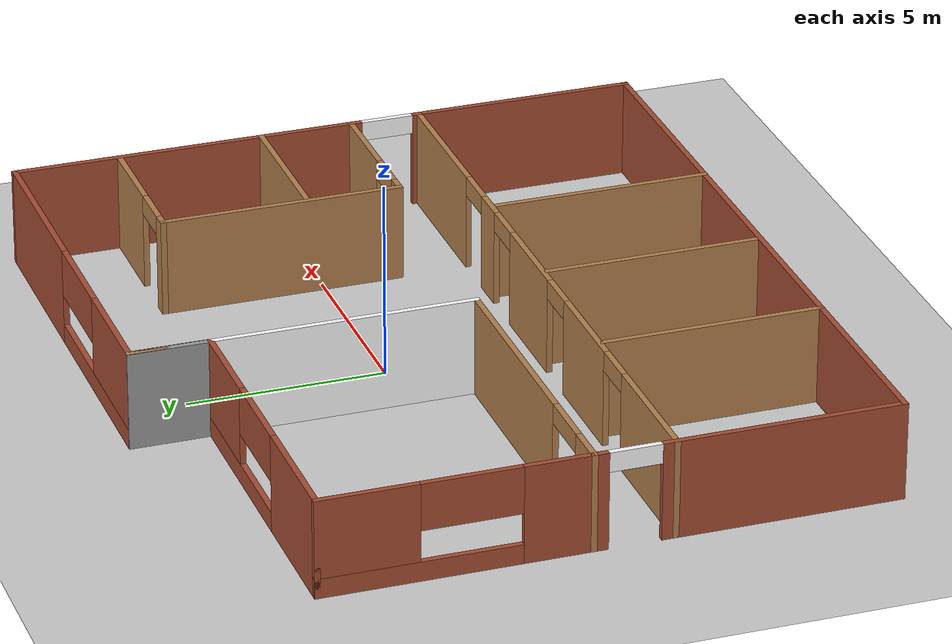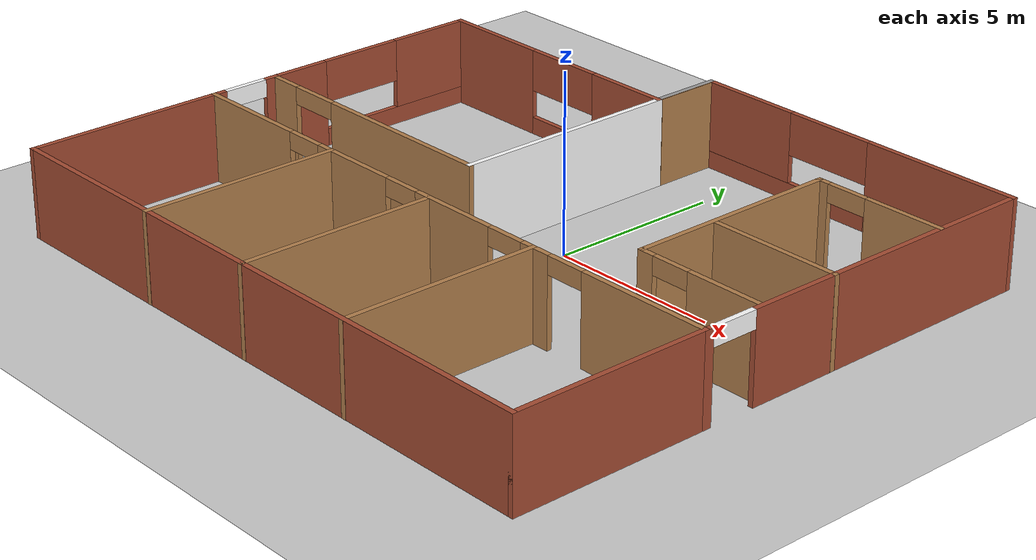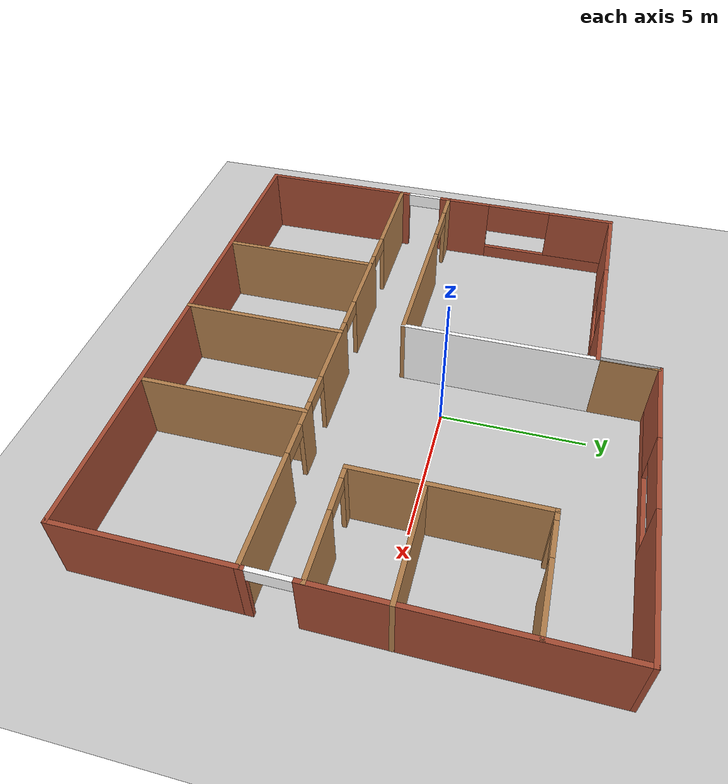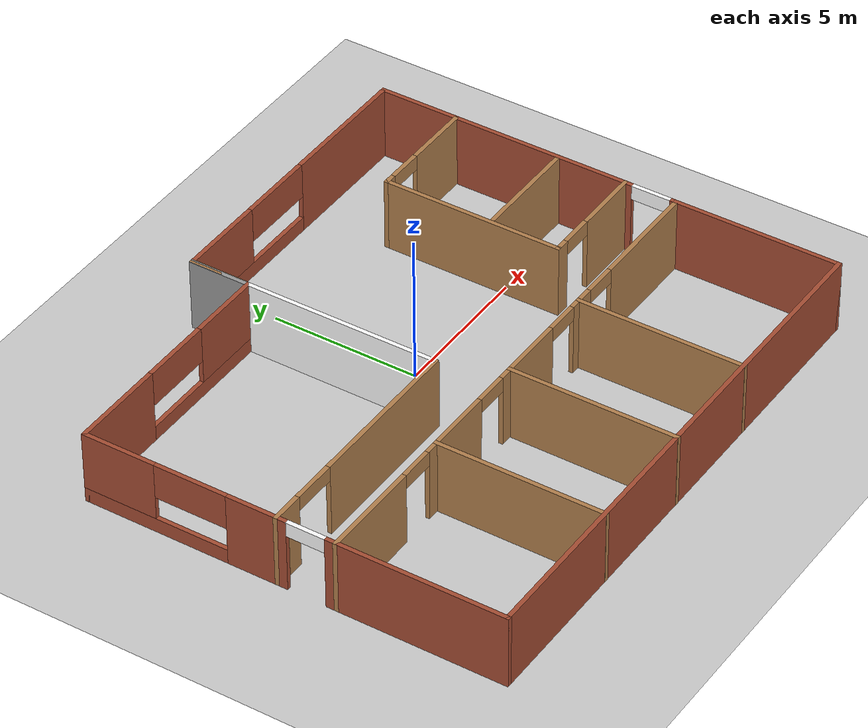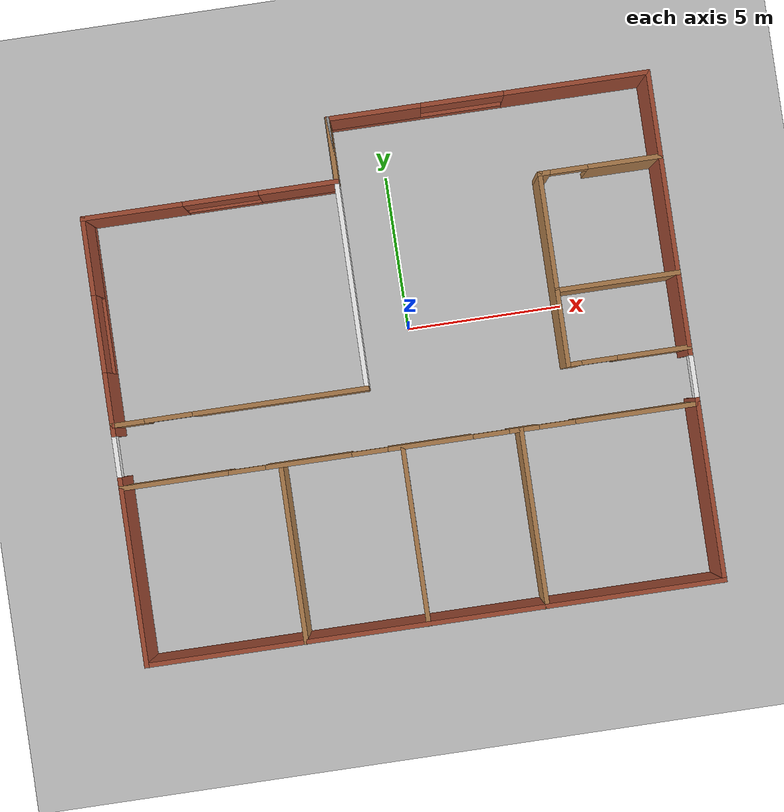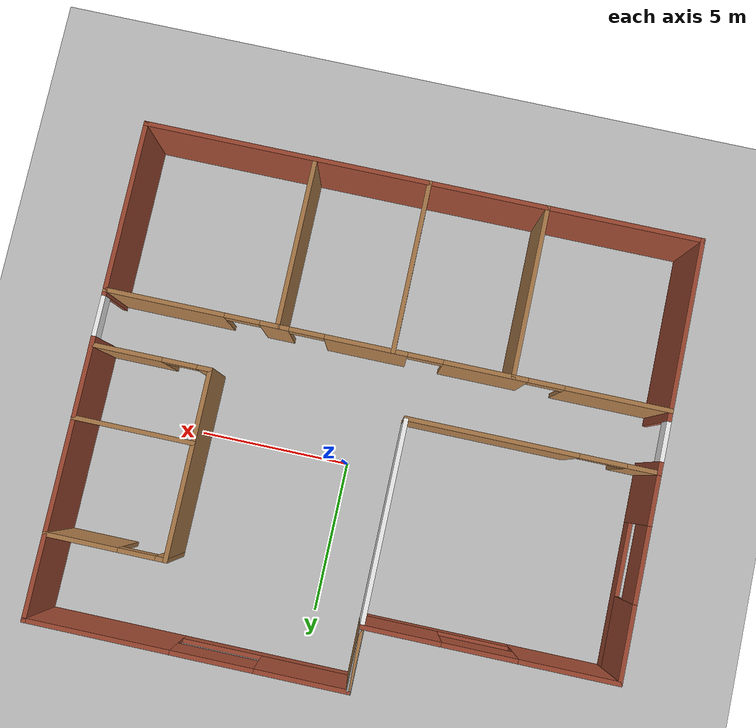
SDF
<sdf version="1.6">
 <world name="default">
  <light name="sun" type="directional">
   <pose>0 0 10 0 -0 0</pose>
   <diffuse>0.8 0.8 0.8 1</diffuse>
   <specular>0.2 0.2 0.2 1</specular>
   <attenuation>
    <range>1000</range>
    <constant>0.9</constant>
    <linear>0.01</linear>
    <quadratic>0.001</quadratic>
   </attenuation>
   <direction>-0.5 0.1 -0.9</direction>
  </light>
  <gravity>0 0 -9.8</gravity>
  <magnetic_field>6e-06 2.3e-05 -4.2e-05</magnetic_field>
  <atmosphere type="adiabatic"/>
  <physics name="default_physics" default="0" type="ode">
   <max_step_size>0.001</max_step_size>
   <real_time_factor>1</real_time_factor>
   <real_time_update_rate>1000</real_time_update_rate>
  </physics>
  <scene><ambient>0.4 0.4 0.4 1</ambient><background>0.7 0.7 0.7 1</background><shadows>1</shadows></scene>
  <audio><device>default</device></audio>
  <spherical_coordinates>
   <surface_model>EARTH_WGS84</surface_model>
   <latitude_deg>0</latitude_deg>
   <longitude_deg>0</longitude_deg>
   <elevation>0</elevation>
   <heading_deg>0</heading_deg>
  </spherical_coordinates>
  <model name="build">
   <link name="link">
    <collision name="collision">
     <geometry><plane><normal>0 0 1</normal><size>100 100</size></plane></geometry>
     <surface><friction><ode><mu>100</mu><mu2>50</mu2></ode></friction></surface>
    </collision>
    <visual name="visual">
     <cast_shadows>0</cast_shadows>
     <geometry><plane><normal>0 0 1</normal><size>100 100</size></plane></geometry>
     <material>
      <script>
       <uri>model://build/materials/scripts/GroundFloor.material</uri>
       <uri>model://build/materials/textures</uri>
       <name>GroundFloor/ground</name>
      </script>
     </material>
    </visual>
   </link>
   <pose>-0.525169 -1.26971 0 0 -0 0</pose>
   <link name="Wall_0">
    <pose>-5.12645 6.10229 0 0 -0 0</pose>
    <visual name="Wall_0_Visual_0">
     <pose>-2.49488 0 1.25 0 -0 0</pose>
     <geometry><box><size>3.26024 0.15 2.5</size></box></geometry>
     <material>
      <script><uri>file://media/materials/scripts/gazebo.material</uri><name>Gazebo/Bricks</name></script>
      <ambient>1 1 1 1</ambient>
     </material>
     <meta><layer>0</layer></meta>
    </visual>
    <collision name="Wall_0_Collision_0">
     <geometry><box><size>3.26024 0.15 2.5</size></box></geometry>
     <pose>-2.49488 0 1.25 0 -0 0</pose>
    </collision>
    <visual name="Wall_0_Visual_1">
     <pose>1.63012 0 0.25 0 -0 0</pose>
     <geometry><box><size>4.98976 0.15 0.5</size></box></geometry>
     <material>
      <script><uri>file://media/materials/scripts/gazebo.material</uri><name>Gazebo/Bricks</name></script>
      <ambient>1 1 1 1</ambient>
     </material>
     <meta><layer>0</layer></meta>
    </visual>
    <collision name="Wall_0_Collision_1">
     <geometry><box><size>4.98976 0.15 0.5</size></box></geometry>
     <pose>1.63012 0 0.25 0 -0 0</pose>
    </collision>
    <visual name="Wall_0_Visual_2">
     <pose>2.83969 0 1.5 0 -0 0</pose>
     <geometry><box><size>2.57061 0.15 2</size></box></geometry>
     <material>
      <script><uri>file://media/materials/scripts/gazebo.material</uri><name>Gazebo/Bricks</name></script>
      <ambient>1 1 1 1</ambient>
     </material>
     <meta><layer>0</layer></meta>
    </visual>
    <collision name="Wall_0_Collision_2">
     <geometry><box><size>2.57061 0.15 2</size></box></geometry>
     <pose>2.83969 0 1.5 0 -0 0</pose>
    </collision>
    <visual name="Wall_0_Visual_3">
     <pose>0.344816 0 1.9 0 -0 0</pose>
     <geometry><box><size>2.41914 0.15 1.2</size></box></geometry>
     <material>
      <script><uri>file://media/materials/scripts/gazebo.material</uri><name>Gazebo/Bricks</name></script>
      <ambient>1 1 1 1</ambient>
     </material>
     <meta><layer>0</layer></meta>
    </visual>
    <collision name="Wall_0_Collision_3">
     <geometry><box><size>2.41914 0.15 1.2</size></box></geometry>
     <pose>0.344816 0 1.9 0 -0 0</pose>
    </collision>
   </link>
   <link name="Wall_1">
    <collision name="Wall_1_Collision">
     <geometry><box><size>6.75 0.15 2.5</size></box></geometry>
     <pose>0 0 1.25 0 -0 0</pose>
    </collision>
    <visual name="Wall_1_Visual">
     <pose>0 0 1.25 0 -0 0</pose>
     <geometry><box><size>6.75 0.15 2.5</size></box></geometry>
     <material>
      <script>
       <uri>model://build/materials/scripts/logo_korea.material</uri>
       <uri>model://build/materials/textures</uri>
       <name>GaitechLogoKorea/logokorea</name>
      </script>
      <ambient>1 1 1 1</ambient>
     </material>
     <meta><layer>0</layer></meta>
    </visual>
    <pose>-1.07645 2.80229 0 0 -0 -1.5708</pose>
   </link>
   <link name="Wall_10">
    <pose>9.17356 2.80229 0 0 -0 1.5708</pose>
    <visual name="Wall_10_Visual_0">
     <pose>-5.23931 0 1.25 0 -0 0</pose>
     <geometry><box><size>0.271377 0.15 2.5</size></box></geometry>
     <material>
      <script><uri>file://media/materials/scripts/gazebo.material</uri><name>Gazebo/Bricks</name></script>
      <ambient>1 1 1 1</ambient>
     </material>
     <meta><layer>0</layer></meta>
    </visual>
    <collision name="Wall_10_Collision_0">
     <geometry><box><size>0.271377 0.15 2.5</size></box></geometry>
     <pose>-5.23931 0 1.25 0 -0 0</pose>
    </collision>
    <visual name="Wall_10_Visual_1">
     <pose>0.805429 0 1.25 0 -0 0</pose>
     <geometry><box><size>9.13914 0.15 2.5</size></box></geometry>
     <material>
      <script><uri>file://media/materials/scripts/gazebo.material</uri><name>Gazebo/Bricks</name></script>
      <ambient>1 1 1 1</ambient>
     </material>
     <meta><layer>0</layer></meta>
    </visual>
    <collision name="Wall_10_Collision_1">
     <geometry><box><size>9.13914 0.15 2.5</size></box></geometry>
     <pose>0.805429 0 1.25 0 -0 0</pose>
    </collision>
    <visual name="Wall_10_Visual_2">
     <pose>-4.43388 0 2.25 0 -0 0</pose>
     <geometry><box><size>1.33948 0.15 0.5</size></box></geometry>
     <material>
      <script>
       <uri>model://build/materials/scripts/logo_korea.material</uri>
       <uri>model://build/materials/textures</uri>
       <name>GaitechLogoKorea/logokorea</name>
      </script>
      <ambient>1 1 1 1</ambient>
     </material>
     <meta><layer>0</layer></meta>
    </visual>
    <collision name="Wall_10_Collision_2">
     <geometry><box><size>1.33948 0.15 0.5</size></box></geometry>
     <pose>-4.43388 0 2.25 0 -0 0</pose>
    </collision>
   </link>
   <link name="Wall_11">
    <pose>4.05103 8.10229 0 0 -0 3.14159</pose>
    <visual name="Wall_11_Visual_0">
     <pose>-2.85098 0 1.25 0 -0 0</pose>
     <geometry><box><size>4.6931 0.15 2.5</size></box></geometry>
     <material>
      <script><uri>file://media/materials/scripts/gazebo.material</uri><name>Gazebo/Bricks</name></script>
      <ambient>1 1 1 1</ambient>
     </material>
     <meta><layer>0</layer></meta>
    </visual>
    <collision name="Wall_11_Collision_0">
     <geometry><box><size>4.6931 0.15 2.5</size></box></geometry>
     <pose>-2.85098 0 1.25 0 -0 0</pose>
    </collision>
    <visual name="Wall_11_Visual_1">
     <pose>2.34655 0 0.25 0 -0 0</pose>
     <geometry><box><size>5.70196 0.15 0.5</size></box></geometry>
     <material>
      <script><uri>file://media/materials/scripts/gazebo.material</uri><name>Gazebo/Bricks</name></script>
      <ambient>1 1 1 1</ambient>
     </material>
     <meta><layer>0</layer></meta>
    </visual>
    <collision name="Wall_11_Collision_1">
     <geometry><box><size>5.70196 0.15 0.5</size></box></geometry>
     <pose>2.34655 0 0.25 0 -0 0</pose>
    </collision>
    <visual name="Wall_11_Visual_2">
     <pose>3.67177 0 1.5 0 -0 0</pose>
     <geometry><box><size>3.05151 0.15 2</size></box></geometry>
     <material>
      <script><uri>file://media/materials/scripts/gazebo.material</uri><name>Gazebo/Bricks</name></script>
      <ambient>1 1 1 1</ambient>
     </material>
     <meta><layer>0</layer></meta>
    </visual>
    <collision name="Wall_11_Collision_2">
     <geometry><box><size>3.05151 0.15 2</size></box></geometry>
     <pose>3.67177 0 1.5 0 -0 0</pose>
    </collision>
    <visual name="Wall_11_Visual_3">
     <pose>0.820796 0 1.9 0 -0 0</pose>
     <geometry><box><size>2.65045 0.15 1.2</size></box></geometry>
     <material>
      <script><uri>file://media/materials/scripts/gazebo.material</uri><name>Gazebo/Bricks</name></script>
      <ambient>1 1 1 1</ambient>
     </material>
     <meta><layer>0</layer></meta>
    </visual>
    <collision name="Wall_11_Collision_3">
     <geometry><box><size>2.65045 0.15 1.2</size></box></geometry>
     <pose>0.820796 0 1.9 0 -0 0</pose>
    </collision>
   </link>
   <link name="Wall_12">
    <collision name="Wall_12_Collision">
     <geometry><box><size>2 0.15 2.5</size></box></geometry>
     <pose>0 0 1.25 0 -0 0</pose>
    </collision>
    <visual name="Wall_12_Visual">
     <pose>0 0 1.25 0 -0 0</pose>
     <geometry><box><size>2 0.15 2.5</size></box></geometry>
     <material>
      <script><uri>file://media/materials/scripts/gazebo.material</uri><name>Gazebo/Wood</name></script>
      <ambient>1 1 1 1</ambient>
     </material>
     <meta><layer>0</layer></meta>
    </visual>
    <pose>-1.0715 7.17729 0 0 -0 -1.5708</pose>
   </link>
   <link name="Wall_14">
    <pose>7.24113 5.40838 0 0 -0 3.14159</pose>
    <visual name="Wall_14_Visual_0">
     <pose>-0.802472 0 1.25 0 -0 0</pose>
     <geometry><box><size>2.39506 0.15 2.5</size></box></geometry>
     <material>
      <script><uri>file://media/materials/scripts/gazebo.material</uri><name>Gazebo/Wood</name></script>
      <ambient>1 1 1 1</ambient>
     </material>
     <meta><layer>0</layer></meta>
    </visual>
    <collision name="Wall_14_Collision_0">
     <geometry><box><size>2.39506 0.15 2.5</size></box></geometry>
     <pose>-0.802472 0 1.25 0 -0 0</pose>
    </collision>
    <visual name="Wall_14_Visual_1">
     <pose>1.79788 0 1.25 0 -0 0</pose>
     <geometry><box><size>0.404246 0.15 2.5</size></box></geometry>
     <material>
      <script><uri>file://media/materials/scripts/gazebo.material</uri><name>Gazebo/Wood</name></script>
      <ambient>1 1 1 1</ambient>
     </material>
     <meta><layer>0</layer></meta>
    </visual>
    <collision name="Wall_14_Collision_1">
     <geometry><box><size>0.404246 0.15 2.5</size></box></geometry>
     <pose>1.79788 0 1.25 0 -0 0</pose>
    </collision>
    <visual name="Wall_14_Visual_2">
     <pose>0.995405 0 2.25 0 -0 0</pose>
     <geometry><box><size>1.2007 0.15 0.5</size></box></geometry>
     <material>
      <script><uri>file://media/materials/scripts/gazebo.material</uri><name>Gazebo/Wood</name></script>
      <ambient>1 1 1 1</ambient>
     </material>
     <meta><layer>0</layer></meta>
    </visual>
    <collision name="Wall_14_Collision_2">
     <geometry><box><size>1.2007 0.15 0.5</size></box></geometry>
     <pose>0.995405 0 2.25 0 -0 0</pose>
    </collision>
   </link>
   <link name="Wall_15">
    <collision name="Wall_15_Collision">
     <geometry><box><size>6.25 0.15 2.5</size></box></geometry>
     <pose>0 0 1.25 0 -0 0</pose>
    </collision>
    <visual name="Wall_15_Visual">
     <pose>0 0 1.25 0 -0 0</pose>
     <geometry><box><size>6.25 0.15 2.5</size></box></geometry>
     <material>
      <script><uri>file://media/materials/scripts/gazebo.material</uri><name>Gazebo/Wood</name></script>
      <ambient>1 1 1 1</ambient>
     </material>
     <meta><layer>0</layer></meta>
    </visual>
    <pose>5.31613 2.35838 0 0 -0 -1.5708</pose>
   </link>
   <link name="Wall_16">
    <pose>7.24113 -0.691625 0 0 -0 0</pose>
    <visual name="Wall_16_Visual_0">
     <pose>-1.74864 0 1.25 0 -0 0</pose>
     <geometry><box><size>0.502717 0.15 2.5</size></box></geometry>
     <material>
      <script><uri>file://media/materials/scripts/gazebo.material</uri><name>Gazebo/Wood</name></script>
      <ambient>1 1 1 1</ambient>
     </material>
     <meta><layer>0</layer></meta>
    </visual>
    <collision name="Wall_16_Collision_0">
     <geometry><box><size>0.502717 0.15 2.5</size></box></geometry>
     <pose>-1.74864 0 1.25 0 -0 0</pose>
    </collision>
    <visual name="Wall_16_Visual_1">
     <pose>0.817011 0 1.25 0 -0 0</pose>
     <geometry><box><size>2.36598 0.15 2.5</size></box></geometry>
     <material>
      <script><uri>file://media/materials/scripts/gazebo.material</uri><name>Gazebo/Wood</name></script>
      <ambient>1 1 1 1</ambient>
     </material>
     <meta><layer>0</layer></meta>
    </visual>
    <collision name="Wall_16_Collision_1">
     <geometry><box><size>2.36598 0.15 2.5</size></box></geometry>
     <pose>0.817011 0 1.25 0 -0 0</pose>
    </collision>
    <visual name="Wall_16_Visual_2">
     <pose>-0.93163 0 2.25 0 -0 0</pose>
     <geometry><box><size>1.13131 0.15 0.5</size></box></geometry>
     <material>
      <script><uri>file://media/materials/scripts/gazebo.material</uri><name>Gazebo/Wood</name></script>
      <ambient>1 1 1 1</ambient>
     </material>
     <meta><layer>0</layer></meta>
    </visual>
    <collision name="Wall_16_Collision_2">
     <geometry><box><size>1.13131 0.15 0.5</size></box></geometry>
     <pose>-0.93163 0 2.25 0 -0 0</pose>
    </collision>
   </link>
   <link name="Wall_18">
    <collision name="Wall_18_Collision">
     <geometry><box><size>4 0.15 2.5</size></box></geometry>
     <pose>0 0 1.25 0 -0 0</pose>
    </collision>
    <visual name="Wall_18_Visual">
     <pose>0 0 1.25 0 -0 0</pose>
     <geometry><box><size>4 0.15 2.5</size></box></geometry>
     <material>
      <script><uri>file://media/materials/scripts/gazebo.material</uri><name>Gazebo/Wood</name></script>
      <ambient>1 1 1 1</ambient>
     </material>
     <meta><layer>0</layer></meta>
    </visual>
    <pose>7.25145 1.68435 0 0 -0 0</pose>
   </link>
   <link name="Wall_2">
    <pose>-5.12645 -0.497707 0 0 -0 3.14159</pose>
    <visual name="Wall_2_Visual_0">
     <pose>-1.3104 0 1.25 0 -0 0</pose>
     <geometry><box><size>5.6292 0.15 2.5</size></box></geometry>
     <material>
      <script><uri>file://media/materials/scripts/gazebo.material</uri><name>Gazebo/Wood</name></script>
      <ambient>1 1 1 1</ambient>
     </material>
     <meta><layer>0</layer></meta>
    </visual>
    <collision name="Wall_2_Collision_0">
     <geometry><box><size>5.6292 0.15 2.5</size></box></geometry>
     <pose>-1.3104 0 1.25 0 -0 0</pose>
    </collision>
    <visual name="Wall_2_Visual_1">
     <pose>3.57686 0 1.25 0 -0 0</pose>
     <geometry><box><size>1.09628 0.15 2.5</size></box></geometry>
     <material>
      <script><uri>file://media/materials/scripts/gazebo.material</uri><name>Gazebo/Wood</name></script>
      <ambient>1 1 1 1</ambient>
     </material>
     <meta><layer>0</layer></meta>
    </visual>
    <collision name="Wall_2_Collision_1">
     <geometry><box><size>1.09628 0.15 2.5</size></box></geometry>
     <pose>3.57686 0 1.25 0 -0 0</pose>
    </collision>
    <visual name="Wall_2_Visual_2">
     <pose>2.26646 0 2.25 0 -0 0</pose>
     <geometry><box><size>1.52453 0.15 0.5</size></box></geometry>
     <material>
      <script><uri>file://media/materials/scripts/gazebo.material</uri><name>Gazebo/Wood</name></script>
      <ambient>1 1 1 1</ambient>
     </material>
     <meta><layer>0</layer></meta>
    </visual>
    <collision name="Wall_2_Collision_2">
     <geometry><box><size>1.52453 0.15 0.5</size></box></geometry>
     <pose>2.26646 0 2.25 0 -0 0</pose>
    </collision>
   </link>
   <link name="Wall_21">
    <collision name="Wall_21_Collision">
     <geometry><box><size>5.75 0.15 2.5</size></box></geometry>
     <pose>0 0 1.25 0 -0 0</pose>
    </collision>
    <visual name="Wall_21_Visual">
     <pose>0 0 1.25 0 -0 0</pose>
     <geometry><box><size>5.75 0.15 2.5</size></box></geometry>
     <material>
      <script><uri>file://media/materials/scripts/gazebo.material</uri><name>Gazebo/Wood</name></script>
      <ambient>1 1 1 1</ambient>
     </material>
     <meta><layer>0</layer></meta>
    </visual>
    <pose>-4.11084 -5.30229 0 0 -0 -1.5708</pose>
   </link>
   <link name="Wall_23">
    <collision name="Wall_23_Collision">
     <geometry><box><size>5.75 0.15 2.5</size></box></geometry>
     <pose>0 0 1.25 0 -0 0</pose>
    </collision>
    <visual name="Wall_23_Visual">
     <pose>0 0 1.25 0 -0 0</pose>
     <geometry><box><size>5.75 0.15 2.5</size></box></geometry>
     <material>
      <script><uri>file://media/materials/scripts/gazebo.material</uri><name>Gazebo/Wood</name></script>
      <ambient>1 1 1 1</ambient>
     </material>
     <meta><layer>0</layer></meta>
    </visual>
    <pose>-0.2249 -5.30229 0 0 -0 -1.5708</pose>
   </link>
   <link name="Wall_27">
    <collision name="Wall_27_Collision">
     <geometry><box><size>5.75 0.15 2.5</size></box></geometry>
     <pose>0 0 1.25 0 -0 0</pose>
    </collision>
    <visual name="Wall_27_Visual">
     <pose>0 0 1.25 0 -0 0</pose>
     <geometry><box><size>5.75 0.15 2.5</size></box></geometry>
     <material>
      <script><uri>file://media/materials/scripts/gazebo.material</uri><name>Gazebo/Wood</name></script>
      <ambient>1 1 1 1</ambient>
     </material>
     <meta><layer>0</layer></meta>
    </visual>
    <pose>3.54539 -5.30229 0 0 -0 -1.5708</pose>
   </link>
   <link name="Wall_3">
    <pose>-9.17644 2.80229 0 0 -0 1.5708</pose>
    <visual name="Wall_3_Visual_0">
     <pose>-2.49273 0 1.25 0 -0 0</pose>
     <geometry><box><size>1.76453 0.15 2.5</size></box></geometry>
     <material>
      <script><uri>file://media/materials/scripts/gazebo.material</uri><name>Gazebo/Bricks</name></script>
      <ambient>1 1 1 1</ambient>
     </material>
     <meta><layer>0</layer></meta>
    </visual>
    <collision name="Wall_3_Collision_0">
     <geometry><box><size>1.76453 0.15 2.5</size></box></geometry>
     <pose>-2.49273 0 1.25 0 -0 0</pose>
    </collision>
    <visual name="Wall_3_Visual_1">
     <pose>0.882266 0 0.25 0 -0 0</pose>
     <geometry><box><size>4.98547 0.15 0.5</size></box></geometry>
     <material>
      <script><uri>file://media/materials/scripts/gazebo.material</uri><name>Gazebo/Bricks</name></script>
      <ambient>1 1 1 1</ambient>
     </material>
     <meta><layer>0</layer></meta>
    </visual>
    <collision name="Wall_3_Collision_1">
     <geometry><box><size>4.98547 0.15 0.5</size></box></geometry>
     <pose>0.882266 0 0.25 0 -0 0</pose>
    </collision>
    <visual name="Wall_3_Visual_2">
     <pose>2.11497 0 1.5 0 -0 0</pose>
     <geometry><box><size>2.52007 0.15 2</size></box></geometry>
     <material>
      <script><uri>file://media/materials/scripts/gazebo.material</uri><name>Gazebo/Bricks</name></script>
      <ambient>1 1 1 1</ambient>
     </material>
     <meta><layer>0</layer></meta>
    </visual>
    <collision name="Wall_3_Collision_2">
     <geometry><box><size>2.52007 0.15 2</size></box></geometry>
     <pose>2.11497 0 1.5 0 -0 0</pose>
    </collision>
    <visual name="Wall_3_Visual_3">
     <pose>-0.377767 0 1.9 0 -0 0</pose>
     <geometry><box><size>2.4654 0.15 1.2</size></box></geometry>
     <material>
      <script><uri>file://media/materials/scripts/gazebo.material</uri><name>Gazebo/Bricks</name></script>
      <ambient>1 1 1 1</ambient>
     </material>
     <meta><layer>0</layer></meta>
    </visual>
    <collision name="Wall_3_Collision_3">
     <geometry><box><size>2.4654 0.15 1.2</size></box></geometry>
     <pose>-0.377767 0 1.9 0 -0 0</pose>
    </collision>
   </link>
   <link name="Wall_35">
    <collision name="Wall_35_Collision">
     <geometry><box><size>2 0.15 2.5</size></box></geometry>
     <pose>0 0 1.25 0 -0 0</pose>
    </collision>
    <visual name="Wall_35_Visual">
     <pose>0 0 1.25 0 -0 0</pose>
     <geometry><box><size>2 0.15 2.5</size></box></geometry>
     <material>
      <script><uri>file://media/materials/scripts/gazebo.material</uri><name>Gazebo/Grey</name></script>
      <ambient>1 1 1 1</ambient>
     </material>
     <meta><layer>0</layer></meta>
    </visual>
    <pose>-1.08899 7.17729 0 0 -0 -1.5708</pose>
   </link>
   <link name="Wall_5">
    <pose>-9.17644 -4.29771 0 0 -0 -1.5708</pose>
    <visual name="Wall_5_Visual_0">
     <pose>-3.65966 0 1.25 0 -0 0</pose>
     <geometry><box><size>0.430683 0.15 2.5</size></box></geometry>
     <material>
      <script><uri>file://media/materials/scripts/gazebo.material</uri><name>Gazebo/Bricks</name></script>
      <ambient>1 1 1 1</ambient>
     </material>
     <meta><layer>0</layer></meta>
    </visual>
    <collision name="Wall_5_Collision_0">
     <geometry><box><size>0.430683 0.15 2.5</size></box></geometry>
     <pose>-3.65966 0 1.25 0 -0 0</pose>
    </collision>
    <visual name="Wall_5_Visual_1">
     <pose>0.861952 0 1.25 0 -0 0</pose>
     <geometry><box><size>6.0261 0.15 2.5</size></box></geometry>
     <material>
      <script><uri>file://media/materials/scripts/gazebo.material</uri><name>Gazebo/Bricks</name></script>
      <ambient>1 1 1 1</ambient>
     </material>
     <meta><layer>0</layer></meta>
    </visual>
    <collision name="Wall_5_Collision_1">
     <geometry><box><size>6.0261 0.15 2.5</size></box></geometry>
     <pose>0.861952 0 1.25 0 -0 0</pose>
    </collision>
    <visual name="Wall_5_Visual_2">
     <pose>-2.79771 0 2.25 0 -0 0</pose>
     <geometry><box><size>1.29322 0.15 0.5</size></box></geometry>
     <material>
      <script>
       <uri>model://build/materials/scripts/logo_korea.material</uri>
       <uri>model://build/materials/textures</uri>
       <name>GaitechLogoKorea/logokorea</name>
      </script>
      <ambient>1 1 1 1</ambient>
     </material>
     <meta><layer>0</layer></meta>
    </visual>
    <collision name="Wall_5_Collision_2">
     <geometry><box><size>1.29322 0.15 0.5</size></box></geometry>
     <pose>-2.79771 0 2.25 0 -0 0</pose>
    </collision>
   </link>
   <link name="Wall_6">
    <collision name="Wall_6_Collision">
     <geometry><box><size>18.5 0.15 2.5</size></box></geometry>
     <pose>0 0 1.25 0 -0 0</pose>
    </collision>
    <visual name="Wall_6_Visual">
     <pose>0 0 1.25 0 -0 0</pose>
     <geometry><box><size>18.5 0.15 2.5</size></box></geometry>
     <material>
      <script><uri>file://media/materials/scripts/gazebo.material</uri><name>Gazebo/Bricks</name></script>
      <ambient>1 1 1 1</ambient>
     </material>
     <meta><layer>0</layer></meta>
    </visual>
    <pose>-0.001445 -8.09771 0 0 -0 0</pose>
   </link>
   <link name="Wall_7">
    <collision name="Wall_7_Collision">
     <geometry><box><size>5.75 0.15 2.5</size></box></geometry>
     <pose>0 0 1.25 0 -0 0</pose>
    </collision>
    <visual name="Wall_7_Visual">
     <pose>0 0 1.25 0 -0 0</pose>
     <geometry><box><size>5.75 0.15 2.5</size></box></geometry>
     <material>
      <script><uri>file://media/materials/scripts/gazebo.material</uri><name>Gazebo/Bricks</name></script>
      <ambient>1 1 1 1</ambient>
     </material>
     <meta><layer>0</layer></meta>
    </visual>
    <pose>9.17356 -5.29771 0 0 -0 1.5708</pose>
   </link>
   <link name="Wall_8">
    <pose>-0.001445 -2.49771 0 0 -0 3.14159</pose>
    <visual name="Wall_8_Visual_0">
     <pose>-7.26232 0 1.25 0 -0 0</pose>
     <geometry><box><size>3.97537 0.15 2.5</size></box></geometry>
     <material>
      <script><uri>file://media/materials/scripts/gazebo.material</uri><name>Gazebo/Wood</name></script>
      <ambient>1 1 1 1</ambient>
     </material>
     <meta><layer>0</layer></meta>
    </visual>
    <collision name="Wall_8_Collision_0">
     <geometry><box><size>3.97537 0.15 2.5</size></box></geometry>
     <pose>-7.26232 0 1.25 0 -0 0</pose>
    </collision>
    <visual name="Wall_8_Visual_1">
     <pose>-3.64497 0 1.25 0 -0 0</pose>
     <geometry><box><size>0.950449 0.15 2.5</size></box></geometry>
     <material>
      <script><uri>file://media/materials/scripts/gazebo.material</uri><name>Gazebo/Wood</name></script>
      <ambient>1 1 1 1</ambient>
     </material>
     <meta><layer>0</layer></meta>
    </visual>
    <collision name="Wall_8_Collision_1">
     <geometry><box><size>0.950449 0.15 2.5</size></box></geometry>
     <pose>-3.64497 0 1.25 0 -0 0</pose>
    </collision>
    <visual name="Wall_8_Visual_2">
     <pose>-0.661125 0 1.25 0 -0 0</pose>
     <geometry><box><size>2.70838 0.15 2.5</size></box></geometry>
     <material>
      <script><uri>file://media/materials/scripts/gazebo.material</uri><name>Gazebo/Wood</name></script>
      <ambient>1 1 1 1</ambient>
     </material>
     <meta><layer>0</layer></meta>
    </visual>
    <collision name="Wall_8_Collision_2">
     <geometry><box><size>2.70838 0.15 2.5</size></box></geometry>
     <pose>-0.661125 0 1.25 0 -0 0</pose>
    </collision>
    <visual name="Wall_8_Visual_3">
     <pose>3.21903 0 1.25 0 -0 0</pose>
     <geometry><box><size>2.74307 0.15 2.5</size></box></geometry>
     <material>
      <script><uri>file://media/materials/scripts/gazebo.material</uri><name>Gazebo/Wood</name></script>
      <ambient>1 1 1 1</ambient>
     </material>
     <meta><layer>0</layer></meta>
    </visual>
    <collision name="Wall_8_Collision_3">
     <geometry><box><size>2.74307 0.15 2.5</size></box></geometry>
     <pose>3.21903 0 1.25 0 -0 0</pose>
    </collision>
    <visual name="Wall_8_Visual_4">
     <pose>7.50907 0 1.25 0 -0 0</pose>
     <geometry><box><size>3.48186 0.15 2.5</size></box></geometry>
     <material>
      <script><uri>file://media/materials/scripts/gazebo.material</uri><name>Gazebo/Wood</name></script>
      <ambient>1 1 1 1</ambient>
     </material>
     <meta><layer>0</layer></meta>
    </visual>
    <collision name="Wall_8_Collision_4">
     <geometry><box><size>3.48186 0.15 2.5</size></box></geometry>
     <pose>7.50907 0 1.25 0 -0 0</pose>
    </collision>
    <visual name="Wall_8_Visual_5">
     <pose>-4.69742 0 2.25 0 -0 0</pose>
     <geometry><box><size>1.15444 0.15 0.5</size></box></geometry>
     <material>
      <script><uri>file://media/materials/scripts/gazebo.material</uri><name>Gazebo/Wood</name></script>
      <ambient>1 1 1 1</ambient>
     </material>
     <meta><layer>0</layer></meta>
    </visual>
    <collision name="Wall_8_Collision_5">
     <geometry><box><size>1.15444 0.15 0.5</size></box></geometry>
     <pose>-4.69742 0 2.25 0 -0 0</pose>
    </collision>
    <visual name="Wall_8_Visual_6">
     <pose>-2.59253 0 2.25 0 -0 0</pose>
     <geometry><box><size>1.15444 0.15 0.5</size></box></geometry>
     <material>
      <script><uri>file://media/materials/scripts/gazebo.material</uri><name>Gazebo/Wood</name></script>
      <ambient>1 1 1 1</ambient>
     </material>
     <meta><layer>0</layer></meta>
    </visual>
    <collision name="Wall_8_Collision_6">
     <geometry><box><size>1.15444 0.15 0.5</size></box></geometry>
     <pose>-2.59253 0 2.25 0 -0 0</pose>
    </collision>
    <visual name="Wall_8_Visual_7">
     <pose>1.27028 0 2.25 0 -0 0</pose>
     <geometry><box><size>1.15444 0.15 0.5</size></box></geometry>
     <material>
      <script><uri>file://media/materials/scripts/gazebo.material</uri><name>Gazebo/Wood</name></script>
      <ambient>1 1 1 1</ambient>
     </material>
     <meta><layer>0</layer></meta>
    </visual>
    <collision name="Wall_8_Collision_7">
     <geometry><box><size>1.15444 0.15 0.5</size></box></geometry>
     <pose>1.27028 0 2.25 0 -0 0</pose>
    </collision>
    <visual name="Wall_8_Visual_8">
     <pose>5.17935 0 2.25 0 -0 0</pose>
     <geometry><box><size>1.17757 0.15 0.5</size></box></geometry>
     <material>
      <script><uri>file://media/materials/scripts/gazebo.material</uri><name>Gazebo/Wood</name></script>
      <ambient>1 1 1 1</ambient>
     </material>
     <meta><layer>0</layer></meta>
    </visual>
    <collision name="Wall_8_Collision_8">
     <geometry><box><size>1.17757 0.15 0.5</size></box></geometry>
     <pose>5.17935 0 2.25 0 -0 0</pose>
    </collision>
   </link>
   <static>1</static>
  </model>
 </world>
</sdf>
